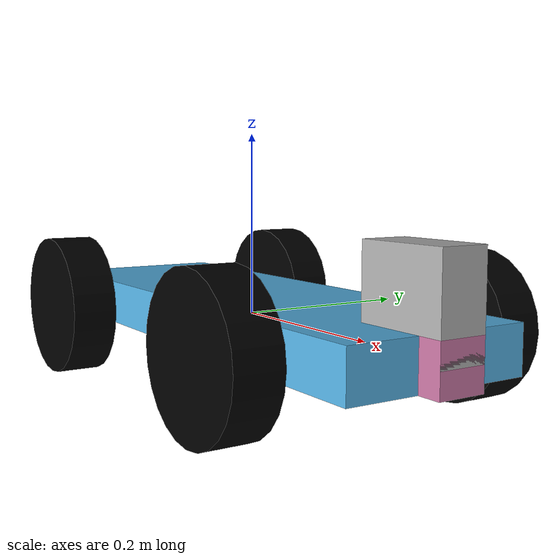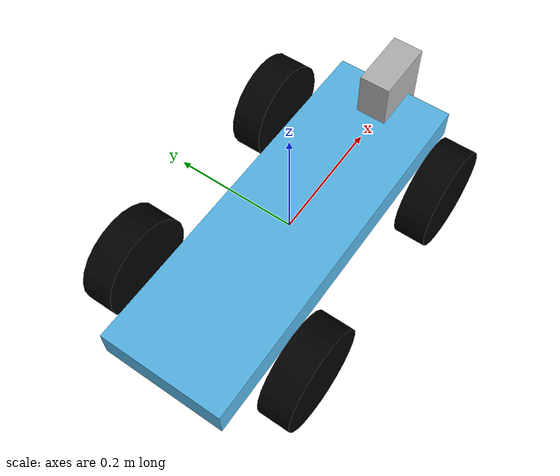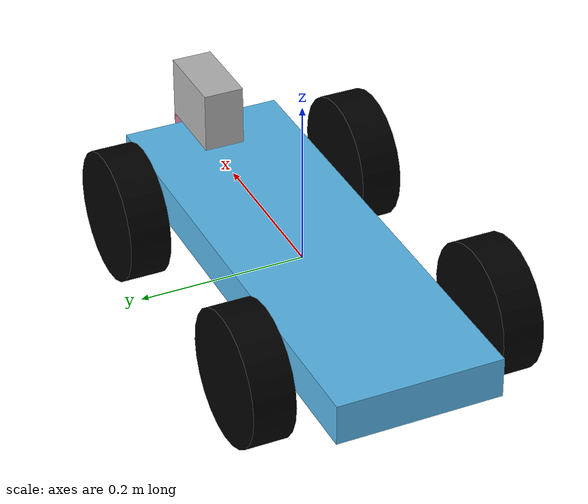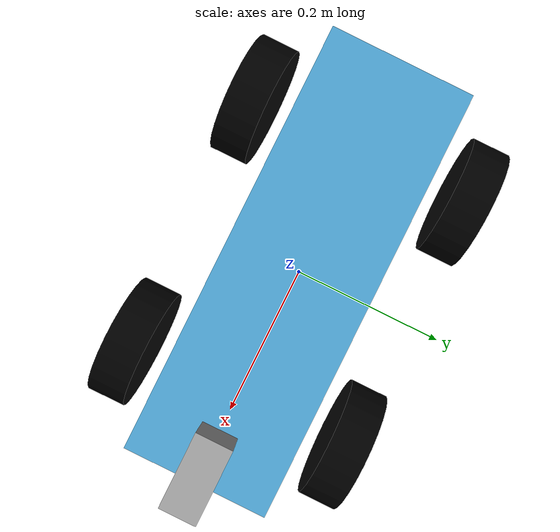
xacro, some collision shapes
<?xml version='1.0'?>
<robot name="my_robot" xmlns:xacro="http://www.ros.org/wiki/xacro">
  <xacro:include filename="$(find my_robot)/urdf/my_robot.gazebo"/>
  <link name="robot_footprint"/>
    <joint name="robot_footprint_joint" type="fixed">
      <origin rpy="0 0 0" xyz="0 0 0"/>
      <parent link="robot_footprint"/>
      <child link="chassis"/>
    </joint>
    <link name="chassis">
    <pose>0 0 0.1 0 0 0</pose>
    <inertial>
      <mass value="15.0"/>
      <origin rpy=" 0 0 0" xyz="0.0 0 0"/>
      <inertia ixx="0.1" ixy="0" ixz="0" iyy="0.1" iyz="0" izz="0.1"/>
    </inertial>
    <collision name="collision">
      <origin rpy=" 0 0 0" xyz="0 0 0"/>
      <geometry>
        <box size=".6 .2 .05"/>
      </geometry>
    </collision>
    <visual name="chassis_visual">
      <origin rpy=" 0 0 0" xyz="0 0 0"/>
      <geometry>
        <box size=".6 .2 .05"/>
      </geometry>
    </visual>
  </link>

  <!--   wheels  -->

  <xacro:property name="length_wheel" value="0.05" />
  <xacro:property name="radius_wheel" value="0.08" />
  <xacro:macro name="default_inertial" params="mass">
               <inertial>
                       <mass value="${mass}" />
                       <inertia ixx="1.0" ixy="0.0" ixz="0.0"
                                iyy="1.0" iyz="0.0"
                                izz="1.0" />
               </inertial>
  </xacro:macro>

  <link name="wheel_1">
      <visual>
          <geometry>
              <cylinder length="${length_wheel}" radius="${radius_wheel}"/>
          </geometry>
      <origin rpy="0 0 0" xyz="0 0 0"/>
        <material name="black">
        <color rgba="0 0 0 1"/>
      </material>
    </visual>
    <collision>
      <geometry>
              <cylinder length="${length_wheel}" radius="${radius_wheel}"/>
      </geometry>
    </collision>
    <xacro:default_inertial mass="1"/>
  </link>

  <link name="wheel_2">
      <visual>
          <geometry>
              <cylinder length="${length_wheel}" radius="${radius_wheel}"/>
          </geometry>
      <origin rpy="0 0 0" xyz="0 0 0"/>
        <material name="black"/>
      </visual>
    <collision>
      <geometry>
              <cylinder length="${length_wheel}" radius="${radius_wheel}"/>
      </geometry>
    </collision>
    <xacro:default_inertial mass="1"/>

  </link>

  <link name="wheel_3">
      <visual>
          <geometry>
              <cylinder length="${length_wheel}" radius="${radius_wheel}"/>
          </geometry>

      <origin rpy="0 0 0" xyz="0 0 0"/>
        <material name="black"/>
      </visual>
    <collision>
      <geometry>
              <cylinder length="${length_wheel}" radius="${radius_wheel}"/>
      </geometry>
    </collision>
    <xacro:default_inertial mass="1"/>
  </link>

  <link name="wheel_4">
      <visual>
          <geometry>
              <cylinder length="${length_wheel}" radius="${radius_wheel}"/>
          </geometry>
      <origin rpy="0 0 0" xyz="0 0 0" />
        <material name="black"/>
      </visual>
    <collision>
      <geometry>
              <cylinder length="${length_wheel}" radius="${radius_wheel}"/>
      </geometry>
    </collision>
    <xacro:default_inertial mass="1"/>

  </link>

 <joint name="base_to_wheel1" type="continuous">
   <parent link="chassis"/>
   <child link="wheel_1"/>
   <origin rpy="-1.5707 0 0" xyz="0.175 0.15 0"/>
   <axis xyz="0 0 1" />
 </joint>

 <joint name="base_to_wheel2" type="continuous">
   <axis xyz="0 0 1" />
   <anchor xyz="0 0 0" />
   <limit effort="100" velocity="100" />
   <parent link="chassis"/>
   <child link="wheel_2"/>
   <origin rpy="-1.5707 0 0" xyz="-0.175 0.15 0"/>
</joint>

 <joint name="base_to_wheel3" type="continuous">
   <parent link="chassis"/>
   <axis xyz="0 0 1" />
   <child link="wheel_3"/>
   <origin rpy="-1.5707 0 0" xyz="0.175 -0.15 0"/>
 </joint>

 <joint name="base_to_wheel4" type="continuous">
   <parent link="chassis"/>
   <axis xyz="0 0 1" />
   <child link="wheel_4"/>
   <origin rpy="-1.5707 0 0" xyz="-0.175 -0.15 0"/>
 </joint>

  <link name="camera">
    <inertial>
      <mass value="0.1"/>
      <origin rpy=" 0 0 0" xyz="0 0 0"/>
      <box_inertia m="0.1" x="0.05" y="0.05" z="0.05"/>
      <inertia ixx="1e-6" ixy="0" ixz="0" iyy="1e-6" iyz="0" izz="1e-6"/>
    </inertial>
    <collision name="collision">
      <origin rpy=" 0 0 0" xyz="0 0 0"/>
      <geometry>
        <box size="0.05 0.05 0.05"/>
      </geometry>
    </collision>
    <visual name="chassis_visual">
      <origin rpy=" 0 0 0" xyz="0 0 0"/>
      <geometry>
        <box size="0.05 0.05 0.05"/>
      </geometry>
    </visual>
  </link>

  <joint name="camera_hinge" type="fixed">
    <origin rpy="0 0 0" xyz="0.3 0 0"/>
    <child link="camera"/>
    <parent link="chassis"/>
    <axis rpy="0 0 0" xyz="0 1 0"/>
    <limit effort="10000" velocity="1000"/>
    <dynamics damping="1.0" friction="1.0"/>
  </joint>

  <link name="hokuyo">
    <inertial>
      <mass value="1e-5"/>
      <origin rpy=" 0 0 0" xyz="0 0 0"/>
      <inertia ixx="1e-6" ixy="0" ixz="0" iyy="1e-6" iyz="0" izz="1e-6"/>
    </inertial>
    <collision name="collision">
      <origin rpy=" 0 0 0" xyz="0 0 0"/>
      <geometry>
        <box size="0.1 0.05 0.1"/>
      </geometry>
    </collision>
    <visual name="chassis_visual">
      <origin rpy=" 0 0 0" xyz="0 0 0"/>
      <geometry>
        <mesh filename="package://my_robot/meshes/hokuyo.dae"/>
      </geometry>
    </visual>
  </link>

  <joint name="hokuyo_joint" type="fixed">
    <origin rpy="0 0 0" xyz="0.275 0 .05"/>
    <child link="hokuyo"/>
    <parent link="chassis"/>
    <axis rpy="0 0 0" xyz="0 1 0"/>
    <limit effort="10000" velocity="1000"/>
    <dynamics damping="1.0" friction="1.0"/>
  </joint>
</robot>
